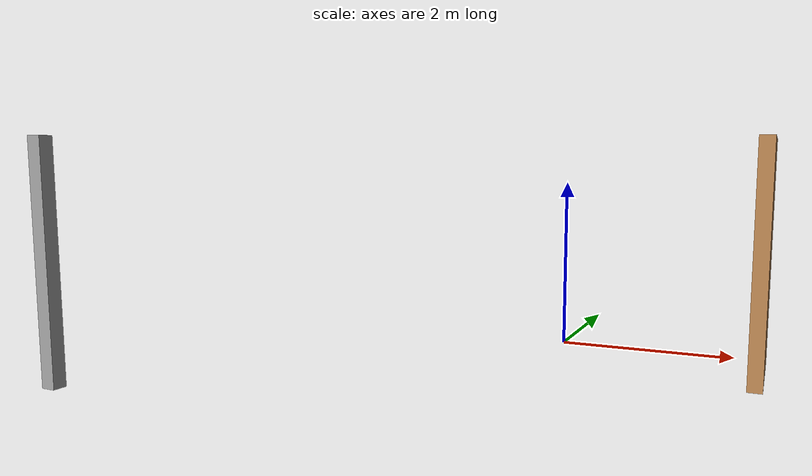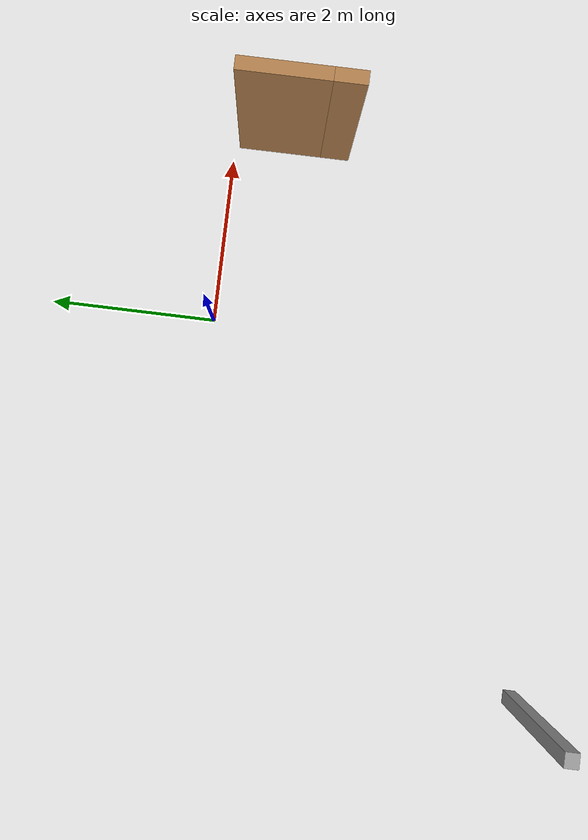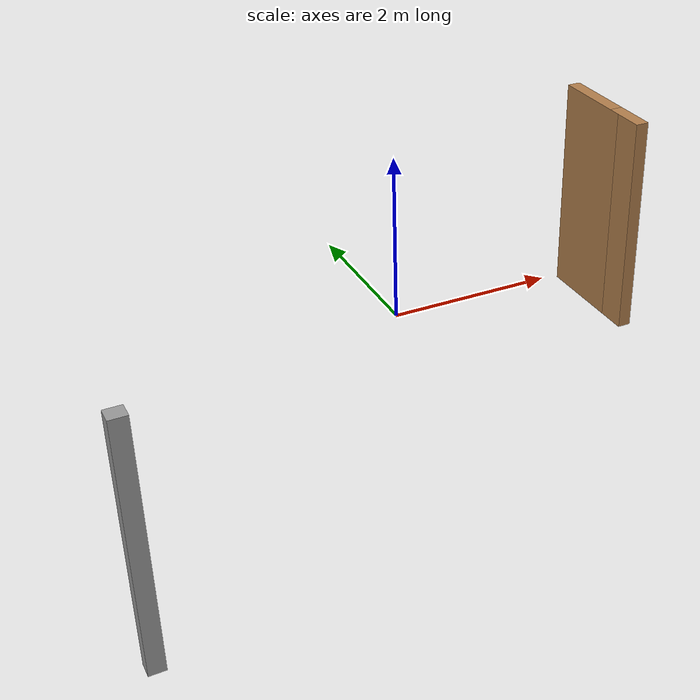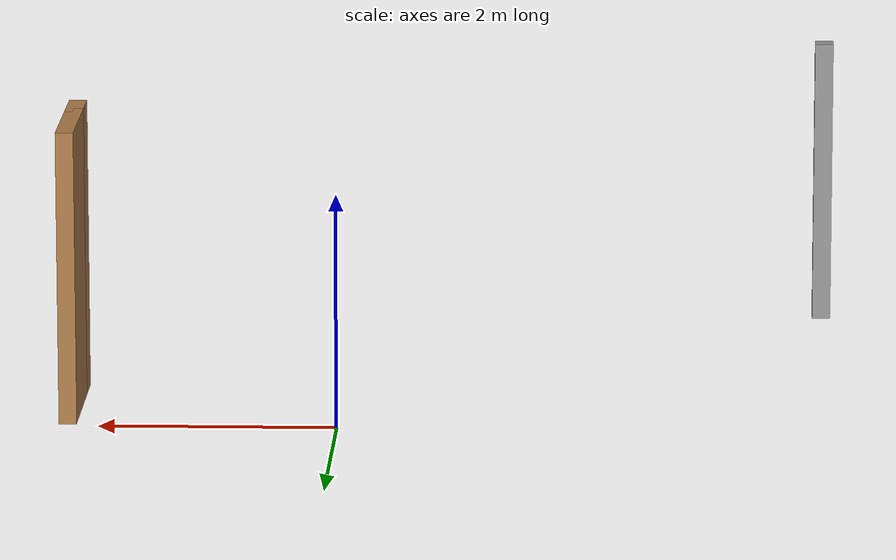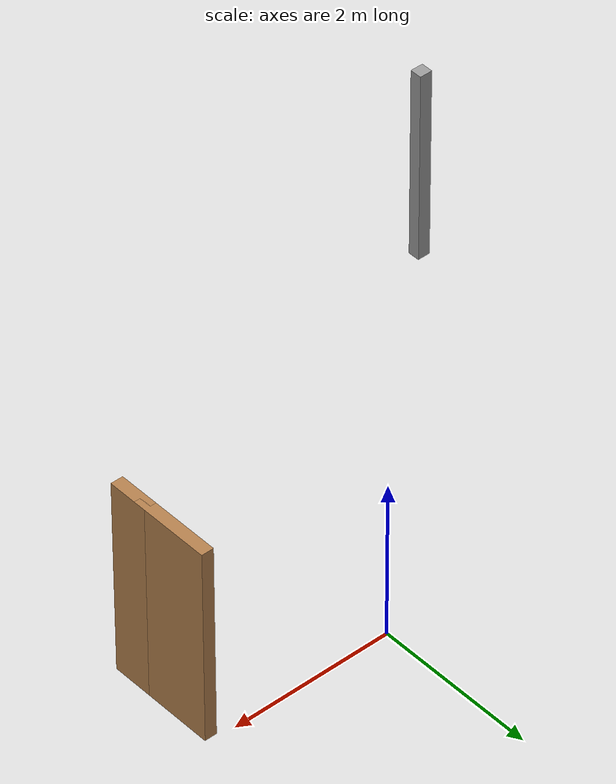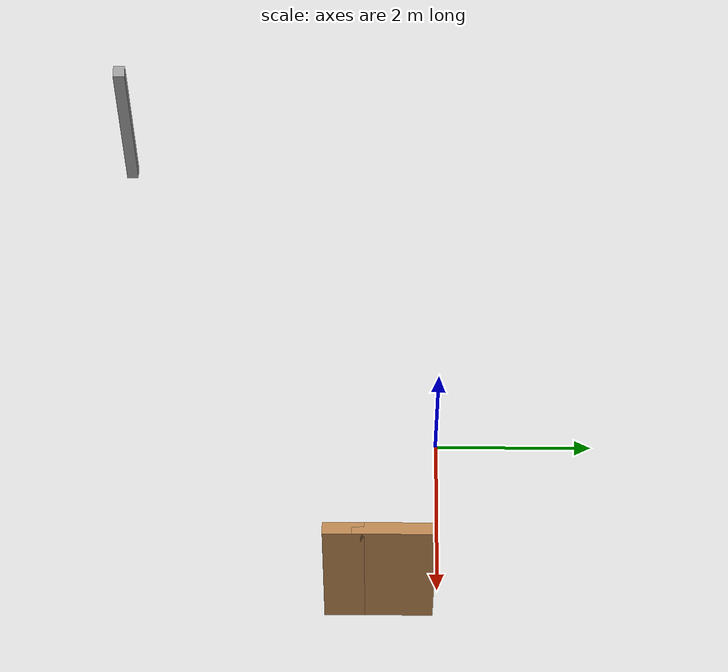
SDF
<?xml version='1.0'?>
<sdf version='1.6'>
  <model name='Untitled'>
    <pose frame=''>-0.934955 -2.12012 0 0 -0 0</pose>
    <link name='Wall_1'>
      <collision name='Wall_1_Collision'>
        <geometry>
          <box>
            <size>0.16 0.15 2.5</size>
          </box>
        </geometry>
        <pose frame=''>0 0 1.25 0 -0 0</pose>
      </collision>
      <visual name='Wall_1_Visual'>
        <pose frame=''>0 0 1.25 0 -0 0</pose>
        <geometry>
          <box>
            <size>0.16 0.15 2.5</size>
          </box>
        </geometry>
        <material>
          <script>
            <uri>file://media/materials/scripts/gazebo.material</uri>
            <name>Gazebo/Grey</name>
          </script>
          <ambient>0 0 0 1</ambient>
        </material>
        <meta>
          <layer>0</layer>
        </meta>
      </visual>
      <pose frame=''>-3.19405 -1.98929 0 0 -0 0</pose>
    </link>
    <link name='Wall_14'>
      <collision name='Wall_14_Collision'>
        <geometry>
          <box>
            <size>1 0.15 2.5</size>
          </box>
        </geometry>
        <pose frame=''>0 0 1.25 0 -0 0</pose>
      </collision>
      <visual name='Wall_14_Visual'>
        <pose frame=''>0 0 1.25 0 -0 0</pose>
        <geometry>
          <box>
            <size>1 0.15 2.5</size>
          </box>
        </geometry>
        <material>
          <script>
            <uri>file://media/materials/scripts/gazebo.material</uri>
            <name>Gazebo/Wood</name>
          </script>
          <ambient>1 1 1 1</ambient>
        </material>
        <meta>
          <layer>0</layer>
        </meta>
      </visual>
      <pose frame=''>3.19904 1.56429 0 0 -0 -1.5708</pose>
    </link>
    <link name='Wall_16'>
      <collision name='Wall_16_Collision'>
        <geometry>
          <box>
            <size>0.5 0.15 2.5</size>
          </box>
        </geometry>
        <pose frame=''>0 0 1.25 0 -0 0</pose>
      </collision>
      <visual name='Wall_16_Visual'>
        <pose frame=''>0 0 1.25 0 -0 0</pose>
        <geometry>
          <box>
            <size>0.5 0.15 2.5</size>
          </box>
        </geometry>
        <material>
          <script>
            <uri>file://media/materials/scripts/gazebo.material</uri>
            <name>Gazebo/Wood</name>
          </script>
          <ambient>1 1 1 1</ambient>
        </material>
        <meta>
          <layer>0</layer>
        </meta>
      </visual>
      <pose frame=''>3.19904 0.964291 0 0 -0 -1.5708</pose>
    </link>
    <static>1</static>
  </model>
</sdf>
